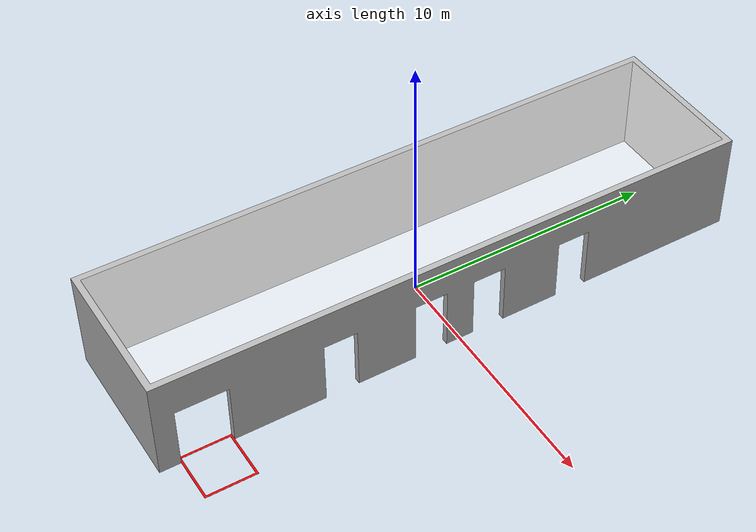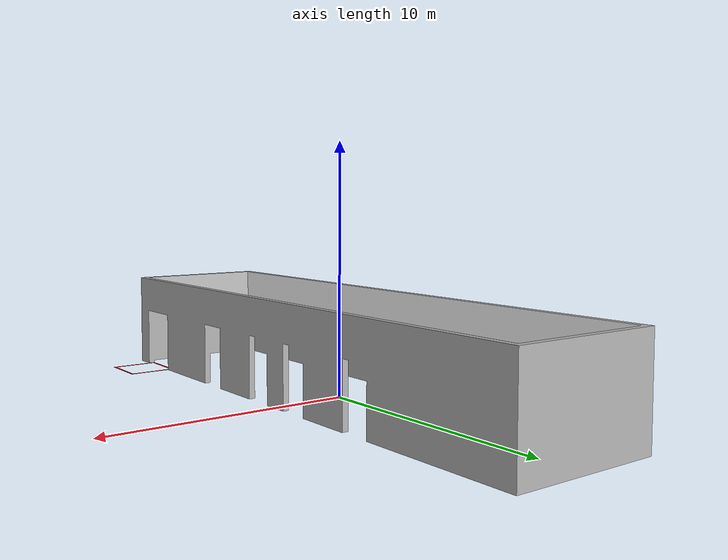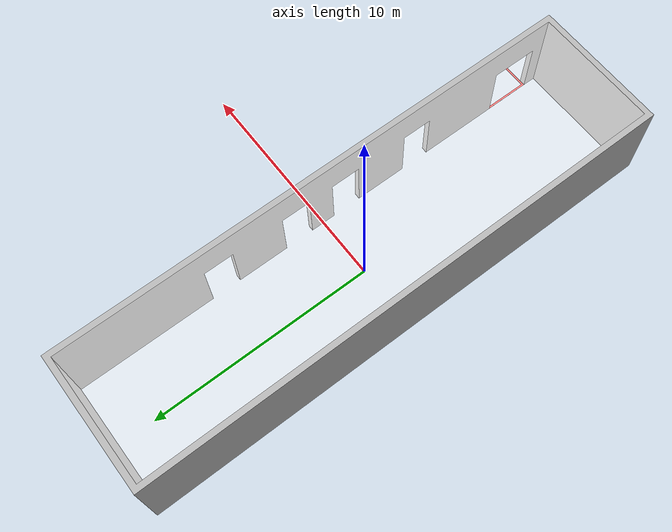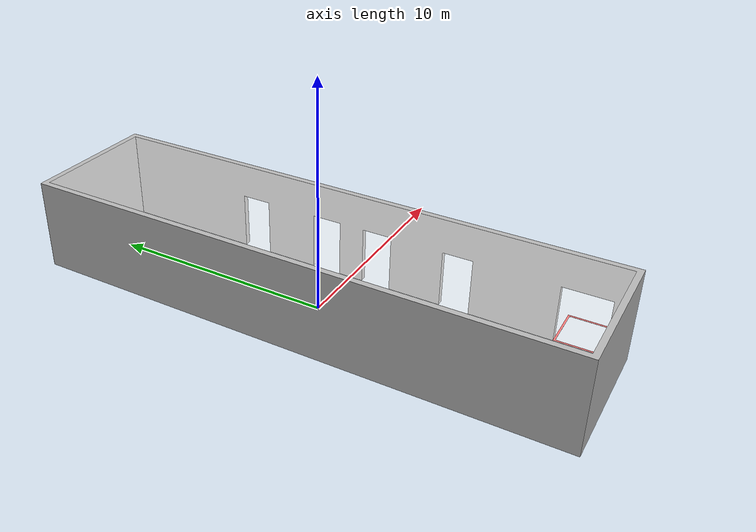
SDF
<?xml version='1.0'?>
<sdf version='1.6'>
  <model name='warehouse'>
    <static>true</static>

    <link name="link">
      <visual name="visual">
        <geometry>
          <mesh>
            <uri>model://warehouse/meshes/warehouse.dae</uri>
          </mesh>
        </geometry>
      </visual>

      <visual name="roof_visual">
        <geometry>
          <mesh>
            <uri>model://warehouse/meshes/roof.stl</uri>
          </mesh>
        </geometry>
        <material>
          <ambient>1.0 1.0 1.0 0.5</ambient>
          <diffuse>1.0 1.0 1.0 0.5</diffuse>
        </material>
      </visual>

      <visual name="tape_visual">
        <geometry>
          <mesh>
            <uri>model://warehouse/meshes/tape.stl</uri>
          </mesh>
        </geometry>
        <material>
          <ambient>1.0 0.0 0.0 1.0</ambient>
          <diffuse>1.0 0.0 0.0 1.0</diffuse>
        </material>
      </visual>

      <collision name="collision">
        <geometry>
          <mesh>
            <uri>model://warehouse/meshes/warehouse.dae</uri>
          </mesh>
        </geometry>
      </collision>
    </link>
  </model>
</sdf>
